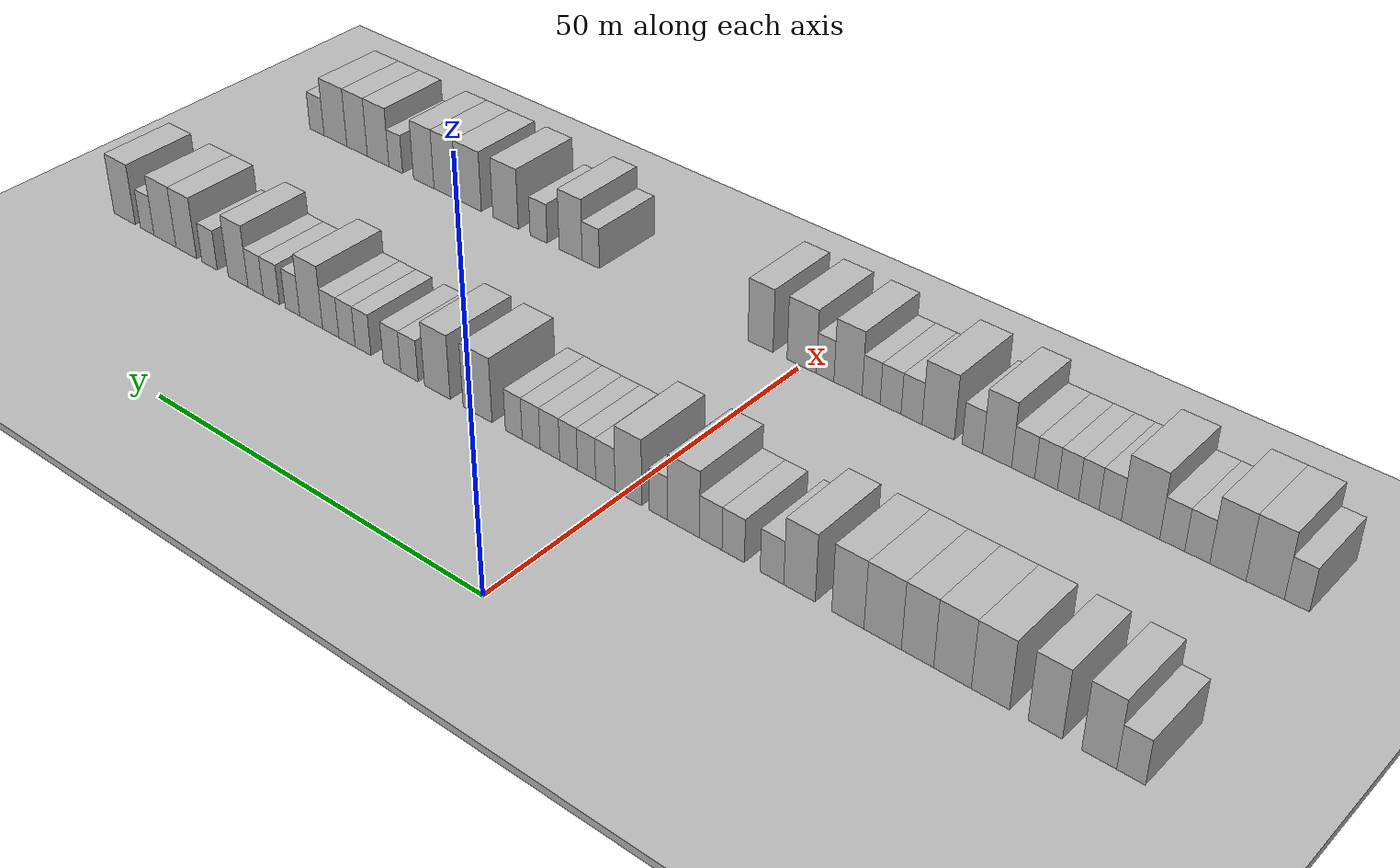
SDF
<sdf version="1.6">
 <world name="default">
  <include><name>ground_plane_1</name><uri>model://HANNAS_ground_plane</uri></include>
  <include>
   <name>ground_plane_2</name>
   <uri>model://HANNAS_ground_plane</uri>
   <pose>100 0 0  0 0 0</pose>
  </include>
  <model name="building_33">
   <static>1</static>
   <pose>25.0000 -60.5266 0 0.000000 0.000000 0.000000</pose>
   <link name="link">
    <pose>0 0 3.00 0 0 0</pose>
    <collision name="collision"><geometry><box><size>10.0000 2.9038 6.0000</size></box></geometry></collision>
    <visual name="visual">
     <cast_shadows>0</cast_shadows>
     <geometry><box><size>10.0000 2.9038 6.0000</size></box></geometry>
     <material>
      <script>
       <uri>model://HANNAS_wall/materials/scripts</uri>
       <uri>model://HANNAS_wall/materials/textures</uri>
       <name>vrc/HANNAS_wall</name>
      </script>
     </material>
    </visual>
   </link>
  </model>
  <model name="building_34">
   <static>1</static>
   <pose>25.0000 -57.2650 0 0.000000 0.000000 0.000000</pose>
   <link name="link">
    <pose>0 0 4.50 0 0 0</pose>
    <collision name="collision"><geometry><box><size>10.0000 3.6195 9.0000</size></box></geometry></collision>
    <visual name="visual">
     <cast_shadows>0</cast_shadows>
     <geometry><box><size>10.0000 3.6195 9.0000</size></box></geometry>
     <material>
      <script>
       <uri>model://HANNAS_wall/materials/scripts</uri>
       <uri>model://HANNAS_wall/materials/textures</uri>
       <name>vrc/HANNAS_wall</name>
      </script>
     </material>
    </visual>
   </link>
  </model>
  <model name="building_35">
   <static>1</static>
   <pose>25.0000 -51.6210 0 0.000000 0.000000 0.000000</pose>
   <link name="link">
    <pose>0 0 4.50 0 0 0</pose>
    <collision name="collision"><geometry><box><size>10.0000 3.6685 9.0000</size></box></geometry></collision>
    <visual name="visual">
     <cast_shadows>0</cast_shadows>
     <geometry><box><size>10.0000 3.6685 9.0000</size></box></geometry>
     <material>
      <script>
       <uri>model://HANNAS_wall/materials/scripts</uri>
       <uri>model://HANNAS_wall/materials/textures</uri>
       <name>vrc/HANNAS_wall</name>
      </script>
     </material>
    </visual>
   </link>
  </model>
  <model name="building_36">
   <static>1</static>
   <pose>25.0000 -45.6863 0 0.000000 0.000000 0.000000</pose>
   <link name="link">
    <pose>0 0 4.50 0 0 0</pose>
    <collision name="collision"><geometry><box><size>10.0000 4.2008 9.0000</size></box></geometry></collision>
    <visual name="visual">
     <cast_shadows>0</cast_shadows>
     <geometry><box><size>10.0000 4.2008 9.0000</size></box></geometry>
     <material>
      <script>
       <uri>model://HANNAS_wall/materials/scripts</uri>
       <uri>model://HANNAS_wall/materials/textures</uri>
       <name>vrc/HANNAS_wall</name>
      </script>
     </material>
    </visual>
   </link>
  </model>
  <model name="building_37">
   <static>1</static>
   <pose>25.0000 -41.4699 0 0.000000 0.000000 0.000000</pose>
   <link name="link">
    <pose>0 0 4.50 0 0 0</pose>
    <collision name="collision"><geometry><box><size>10.0000 4.2320 9.0000</size></box></geometry></collision>
    <visual name="visual">
     <cast_shadows>0</cast_shadows>
     <geometry><box><size>10.0000 4.2320 9.0000</size></box></geometry>
     <material>
      <script>
       <uri>model://HANNAS_wall/materials/scripts</uri>
       <uri>model://HANNAS_wall/materials/textures</uri>
       <name>vrc/HANNAS_wall</name>
      </script>
     </material>
    </visual>
   </link>
  </model>
  <model name="building_38">
   <static>1</static>
   <pose>25.0000 -37.5011 0 0.000000 0.000000 0.000000</pose>
   <link name="link">
    <pose>0 0 4.50 0 0 0</pose>
    <collision name="collision"><geometry><box><size>10.0000 3.7056 9.0000</size></box></geometry></collision>
    <visual name="visual">
     <cast_shadows>0</cast_shadows>
     <geometry><box><size>10.0000 3.7056 9.0000</size></box></geometry>
     <material>
      <script>
       <uri>model://HANNAS_wall/materials/scripts</uri>
       <uri>model://HANNAS_wall/materials/textures</uri>
       <name>vrc/HANNAS_wall</name>
      </script>
     </material>
    </visual>
   </link>
  </model>
  <model name="building_39">
   <static>1</static>
   <pose>25.0000 -33.4567 0 0.000000 0.000000 0.000000</pose>
   <link name="link">
    <pose>0 0 4.50 0 0 0</pose>
    <collision name="collision"><geometry><box><size>10.0000 4.3831 9.0000</size></box></geometry></collision>
    <visual name="visual">
     <cast_shadows>0</cast_shadows>
     <geometry><box><size>10.0000 4.3831 9.0000</size></box></geometry>
     <material>
      <script>
       <uri>model://HANNAS_wall/materials/scripts</uri>
       <uri>model://HANNAS_wall/materials/textures</uri>
       <name>vrc/HANNAS_wall</name>
      </script>
     </material>
    </visual>
   </link>
  </model>
  <model name="building_40">
   <static>1</static>
   <pose>25.0000 -29.3415 0 0.000000 0.000000 0.000000</pose>
   <link name="link">
    <pose>0 0 4.50 0 0 0</pose>
    <collision name="collision"><geometry><box><size>10.0000 3.8474 9.0000</size></box></geometry></collision>
    <visual name="visual">
     <cast_shadows>0</cast_shadows>
     <geometry><box><size>10.0000 3.8474 9.0000</size></box></geometry>
     <material>
      <script>
       <uri>model://HANNAS_wall/materials/scripts</uri>
       <uri>model://HANNAS_wall/materials/textures</uri>
       <name>vrc/HANNAS_wall</name>
      </script>
     </material>
    </visual>
   </link>
  </model>
  <model name="building_41">
   <static>1</static>
   <pose>25.0000 -23.4718 0 0.000000 0.000000 0.000000</pose>
   <link name="link">
    <pose>0 0 4.50 0 0 0</pose>
    <collision name="collision"><geometry><box><size>10.0000 3.8921 9.0000</size></box></geometry></collision>
    <visual name="visual">
     <cast_shadows>0</cast_shadows>
     <geometry><box><size>10.0000 3.8921 9.0000</size></box></geometry>
     <material>
      <script>
       <uri>model://HANNAS_wall/materials/scripts</uri>
       <uri>model://HANNAS_wall/materials/textures</uri>
       <name>vrc/HANNAS_wall</name>
      </script>
     </material>
    </visual>
   </link>
  </model>
  <model name="building_42">
   <static>1</static>
   <pose>25.0000 -20.0502 0 0.000000 0.000000 0.000000</pose>
   <link name="link">
    <pose>0 0 3.00 0 0 0</pose>
    <collision name="collision"><geometry><box><size>10.0000 2.9510 6.0000</size></box></geometry></collision>
    <visual name="visual">
     <cast_shadows>0</cast_shadows>
     <geometry><box><size>10.0000 2.9510 6.0000</size></box></geometry>
     <material>
      <script>
       <uri>model://HANNAS_wall/materials/scripts</uri>
       <uri>model://HANNAS_wall/materials/textures</uri>
       <name>vrc/HANNAS_wall</name>
      </script>
     </material>
    </visual>
   </link>
  </model>
  <model name="building_43">
   <static>1</static>
   <pose>25.0000 -15.1370 0 0.000000 0.000000 0.000000</pose>
   <link name="link">
    <pose>0 0 3.00 0 0 0</pose>
    <collision name="collision"><geometry><box><size>10.0000 2.8754 6.0000</size></box></geometry></collision>
    <visual name="visual">
     <cast_shadows>0</cast_shadows>
     <geometry><box><size>10.0000 2.8754 6.0000</size></box></geometry>
     <material>
      <script>
       <uri>model://HANNAS_wall/materials/scripts</uri>
       <uri>model://HANNAS_wall/materials/textures</uri>
       <name>vrc/HANNAS_wall</name>
      </script>
     </material>
    </visual>
   </link>
  </model>
  <model name="building_44">
   <static>1</static>
   <pose>25.0000 -12.2270 0 0.000000 0.000000 0.000000</pose>
   <link name="link">
    <pose>0 0 3.00 0 0 0</pose>
    <collision name="collision"><geometry><box><size>10.0000 2.9447 6.0000</size></box></geometry></collision>
    <visual name="visual">
     <cast_shadows>0</cast_shadows>
     <geometry><box><size>10.0000 2.9447 6.0000</size></box></geometry>
     <material>
      <script>
       <uri>model://HANNAS_wall/materials/scripts</uri>
       <uri>model://HANNAS_wall/materials/textures</uri>
       <name>vrc/HANNAS_wall</name>
      </script>
     </material>
    </visual>
   </link>
  </model>
  <model name="building_45">
   <static>1</static>
   <pose>25.0000 -8.6451 0 0.000000 0.000000 0.000000</pose>
   <link name="link">
    <pose>0 0 4.50 0 0 0</pose>
    <collision name="collision"><geometry><box><size>10.0000 4.2191 9.0000</size></box></geometry></collision>
    <visual name="visual">
     <cast_shadows>0</cast_shadows>
     <geometry><box><size>10.0000 4.2191 9.0000</size></box></geometry>
     <material>
      <script>
       <uri>model://HANNAS_wall/materials/scripts</uri>
       <uri>model://HANNAS_wall/materials/textures</uri>
       <name>vrc/HANNAS_wall</name>
      </script>
     </material>
    </visual>
   </link>
  </model>
  <model name="building_46">
   <static>1</static>
   <pose>25.0000 -5.2755 0 0.000000 0.000000 0.000000</pose>
   <link name="link">
    <pose>0 0 3.00 0 0 0</pose>
    <collision name="collision"><geometry><box><size>10.0000 2.5201 6.0000</size></box></geometry></collision>
    <visual name="visual">
     <cast_shadows>0</cast_shadows>
     <geometry><box><size>10.0000 2.5201 6.0000</size></box></geometry>
     <material>
      <script>
       <uri>model://HANNAS_wall/materials/scripts</uri>
       <uri>model://HANNAS_wall/materials/textures</uri>
       <name>vrc/HANNAS_wall</name>
      </script>
     </material>
    </visual>
   </link>
  </model>
  <model name="building_47">
   <static>1</static>
   <pose>25.0000 -1.1833 0 0.000000 0.000000 0.000000</pose>
   <link name="link">
    <pose>0 0 4.50 0 0 0</pose>
    <collision name="collision"><geometry><box><size>10.0000 3.6642 9.0000</size></box></geometry></collision>
    <visual name="visual">
     <cast_shadows>0</cast_shadows>
     <geometry><box><size>10.0000 3.6642 9.0000</size></box></geometry>
     <material>
      <script>
       <uri>model://HANNAS_wall/materials/scripts</uri>
       <uri>model://HANNAS_wall/materials/textures</uri>
       <name>vrc/HANNAS_wall</name>
      </script>
     </material>
    </visual>
   </link>
  </model>
  <model name="building_48">
   <static>1</static>
   <pose>25.0000 2.0056 0 0.000000 0.000000 0.000000</pose>
   <link name="link">
    <pose>0 0 3.00 0 0 0</pose>
    <collision name="collision"><geometry><box><size>10.0000 2.7137 6.0000</size></box></geometry></collision>
    <visual name="visual">
     <cast_shadows>0</cast_shadows>
     <geometry><box><size>10.0000 2.7137 6.0000</size></box></geometry>
     <material>
      <script>
       <uri>model://HANNAS_wall/materials/scripts</uri>
       <uri>model://HANNAS_wall/materials/textures</uri>
       <name>vrc/HANNAS_wall</name>
      </script>
     </material>
    </visual>
   </link>
  </model>
  <model name="building_49">
   <static>1</static>
   <pose>25.0000 4.6381 0 0.000000 0.000000 0.000000</pose>
   <link name="link">
    <pose>0 0 3.00 0 0 0</pose>
    <collision name="collision"><geometry><box><size>10.0000 2.5514 6.0000</size></box></geometry></collision>
    <visual name="visual">
     <cast_shadows>0</cast_shadows>
     <geometry><box><size>10.0000 2.5514 6.0000</size></box></geometry>
     <material>
      <script>
       <uri>model://HANNAS_wall/materials/scripts</uri>
       <uri>model://HANNAS_wall/materials/textures</uri>
       <name>vrc/HANNAS_wall</name>
      </script>
     </material>
    </visual>
   </link>
  </model>
  <model name="building_50">
   <static>1</static>
   <pose>25.0000 7.1918 0 0.000000 0.000000 0.000000</pose>
   <link name="link">
    <pose>0 0 3.00 0 0 0</pose>
    <collision name="collision"><geometry><box><size>10.0000 2.5560 6.0000</size></box></geometry></collision>
    <visual name="visual">
     <cast_shadows>0</cast_shadows>
     <geometry><box><size>10.0000 2.5560 6.0000</size></box></geometry>
     <material>
      <script>
       <uri>model://HANNAS_wall/materials/scripts</uri>
       <uri>model://HANNAS_wall/materials/textures</uri>
       <name>vrc/HANNAS_wall</name>
      </script>
     </material>
    </visual>
   </link>
  </model>
  <model name="building_51">
   <static>1</static>
   <pose>25.0000 9.8835 0 0.000000 0.000000 0.000000</pose>
   <link name="link">
    <pose>0 0 3.00 0 0 0</pose>
    <collision name="collision"><geometry><box><size>10.0000 2.8274 6.0000</size></box></geometry></collision>
    <visual name="visual">
     <cast_shadows>0</cast_shadows>
     <geometry><box><size>10.0000 2.8274 6.0000</size></box></geometry>
     <material>
      <script>
       <uri>model://HANNAS_wall/materials/scripts</uri>
       <uri>model://HANNAS_wall/materials/textures</uri>
       <name>vrc/HANNAS_wall</name>
      </script>
     </material>
    </visual>
   </link>
  </model>
  <model name="building_52">
   <static>1</static>
   <pose>25.0000 12.6209 0 0.000000 0.000000 0.000000</pose>
   <link name="link">
    <pose>0 0 3.00 0 0 0</pose>
    <collision name="collision"><geometry><box><size>10.0000 2.6474 6.0000</size></box></geometry></collision>
    <visual name="visual">
     <cast_shadows>0</cast_shadows>
     <geometry><box><size>10.0000 2.6474 6.0000</size></box></geometry>
     <material>
      <script>
       <uri>model://HANNAS_wall/materials/scripts</uri>
       <uri>model://HANNAS_wall/materials/textures</uri>
       <name>vrc/HANNAS_wall</name>
      </script>
     </material>
    </visual>
   </link>
  </model>
  <model name="building_53">
   <static>1</static>
   <pose>25.0000 15.1925 0 0.000000 0.000000 0.000000</pose>
   <link name="link">
    <pose>0 0 3.00 0 0 0</pose>
    <collision name="collision"><geometry><box><size>10.0000 2.4960 6.0000</size></box></geometry></collision>
    <visual name="visual">
     <cast_shadows>0</cast_shadows>
     <geometry><box><size>10.0000 2.4960 6.0000</size></box></geometry>
     <material>
      <script>
       <uri>model://HANNAS_wall/materials/scripts</uri>
       <uri>model://HANNAS_wall/materials/textures</uri>
       <name>vrc/HANNAS_wall</name>
      </script>
     </material>
    </visual>
   </link>
  </model>
  <model name="building_54">
   <static>1</static>
   <pose>25.0000 20.6453 0 0.000000 0.000000 0.000000</pose>
   <link name="link">
    <pose>0 0 4.50 0 0 0</pose>
    <collision name="collision"><geometry><box><size>10.0000 4.4096 9.0000</size></box></geometry></collision>
    <visual name="visual">
     <cast_shadows>0</cast_shadows>
     <geometry><box><size>10.0000 4.4096 9.0000</size></box></geometry>
     <material>
      <script>
       <uri>model://HANNAS_wall/materials/scripts</uri>
       <uri>model://HANNAS_wall/materials/textures</uri>
       <name>vrc/HANNAS_wall</name>
      </script>
     </material>
    </visual>
   </link>
  </model>
  <model name="building_55">
   <static>1</static>
   <pose>25.0000 26.8684 0 0.000000 0.000000 0.000000</pose>
   <link name="link">
    <pose>0 0 4.50 0 0 0</pose>
    <collision name="collision"><geometry><box><size>10.0000 4.0366 9.0000</size></box></geometry></collision>
    <visual name="visual">
     <cast_shadows>0</cast_shadows>
     <geometry><box><size>10.0000 4.0366 9.0000</size></box></geometry>
     <material>
      <script>
       <uri>model://HANNAS_wall/materials/scripts</uri>
       <uri>model://HANNAS_wall/materials/textures</uri>
       <name>vrc/HANNAS_wall</name>
      </script>
     </material>
    </visual>
   </link>
  </model>
  <model name="building_56">
   <static>1</static>
   <pose>25.0000 31.2788 0 0.000000 0.000000 0.000000</pose>
   <link name="link">
    <pose>0 0 3.00 0 0 0</pose>
    <collision name="collision"><geometry><box><size>10.0000 2.7842 6.0000</size></box></geometry></collision>
    <visual name="visual">
     <cast_shadows>0</cast_shadows>
     <geometry><box><size>10.0000 2.7842 6.0000</size></box></geometry>
     <material>
      <script>
       <uri>model://HANNAS_wall/materials/scripts</uri>
       <uri>model://HANNAS_wall/materials/textures</uri>
       <name>vrc/HANNAS_wall</name>
      </script>
     </material>
    </visual>
   </link>
  </model>
  <model name="building_57">
   <static>1</static>
   <pose>25.0000 34.0920 0 0.000000 0.000000 0.000000</pose>
   <link name="link">
    <pose>0 0 3.00 0 0 0</pose>
    <collision name="collision"><geometry><box><size>10.0000 2.8422 6.0000</size></box></geometry></collision>
    <visual name="visual">
     <cast_shadows>0</cast_shadows>
     <geometry><box><size>10.0000 2.8422 6.0000</size></box></geometry>
     <material>
      <script>
       <uri>model://HANNAS_wall/materials/scripts</uri>
       <uri>model://HANNAS_wall/materials/textures</uri>
       <name>vrc/HANNAS_wall</name>
      </script>
     </material>
    </visual>
   </link>
  </model>
  <model name="building_58">
   <static>1</static>
   <pose>25.0000 38.8232 0 0.000000 0.000000 0.000000</pose>
   <link name="link">
    <pose>0 0 3.00 0 0 0</pose>
    <collision name="collision"><geometry><box><size>10.0000 2.6201 6.0000</size></box></geometry></collision>
    <visual name="visual">
     <cast_shadows>0</cast_shadows>
     <geometry><box><size>10.0000 2.6201 6.0000</size></box></geometry>
     <material>
      <script>
       <uri>model://HANNAS_wall/materials/scripts</uri>
       <uri>model://HANNAS_wall/materials/textures</uri>
       <name>vrc/HANNAS_wall</name>
      </script>
     </material>
    </visual>
   </link>
  </model>
  <model name="building_59">
   <static>1</static>
   <pose>25.0000 41.4877 0 0.000000 0.000000 0.000000</pose>
   <link name="link">
    <pose>0 0 3.00 0 0 0</pose>
    <collision name="collision"><geometry><box><size>10.0000 2.7090 6.0000</size></box></geometry></collision>
    <visual name="visual">
     <cast_shadows>0</cast_shadows>
     <geometry><box><size>10.0000 2.7090 6.0000</size></box></geometry>
     <material>
      <script>
       <uri>model://HANNAS_wall/materials/scripts</uri>
       <uri>model://HANNAS_wall/materials/textures</uri>
       <name>vrc/HANNAS_wall</name>
      </script>
     </material>
    </visual>
   </link>
  </model>
  <model name="building_60">
   <static>1</static>
   <pose>25.0000 44.2271 0 0.000000 0.000000 0.000000</pose>
   <link name="link">
    <pose>0 0 3.00 0 0 0</pose>
    <collision name="collision"><geometry><box><size>10.0000 2.7699 6.0000</size></box></geometry></collision>
    <visual name="visual">
     <cast_shadows>0</cast_shadows>
     <geometry><box><size>10.0000 2.7699 6.0000</size></box></geometry>
     <material>
      <script>
       <uri>model://HANNAS_wall/materials/scripts</uri>
       <uri>model://HANNAS_wall/materials/textures</uri>
       <name>vrc/HANNAS_wall</name>
      </script>
     </material>
    </visual>
   </link>
  </model>
  <model name="building_61">
   <static>1</static>
   <pose>25.0000 47.5703 0 0.000000 0.000000 0.000000</pose>
   <link name="link">
    <pose>0 0 4.50 0 0 0</pose>
    <collision name="collision"><geometry><box><size>10.0000 3.9163 9.0000</size></box></geometry></collision>
    <visual name="visual">
     <cast_shadows>0</cast_shadows>
     <geometry><box><size>10.0000 3.9163 9.0000</size></box></geometry>
     <material>
      <script>
       <uri>model://HANNAS_wall/materials/scripts</uri>
       <uri>model://HANNAS_wall/materials/textures</uri>
       <name>vrc/HANNAS_wall</name>
      </script>
     </material>
    </visual>
   </link>
  </model>
  <model name="building_62">
   <static>1</static>
   <pose>25.0000 50.7920 0 0.000000 0.000000 0.000000</pose>
   <link name="link">
    <pose>0 0 3.00 0 0 0</pose>
    <collision name="collision"><geometry><box><size>10.0000 2.5271 6.0000</size></box></geometry></collision>
    <visual name="visual">
     <cast_shadows>0</cast_shadows>
     <geometry><box><size>10.0000 2.5271 6.0000</size></box></geometry>
     <material>
      <script>
       <uri>model://HANNAS_wall/materials/scripts</uri>
       <uri>model://HANNAS_wall/materials/textures</uri>
       <name>vrc/HANNAS_wall</name>
      </script>
     </material>
    </visual>
   </link>
  </model>
  <model name="building_63">
   <static>1</static>
   <pose>25.0000 54.4935 0 0.000000 0.000000 0.000000</pose>
   <link name="link">
    <pose>0 0 3.00 0 0 0</pose>
    <collision name="collision"><geometry><box><size>10.0000 2.8759 6.0000</size></box></geometry></collision>
    <visual name="visual">
     <cast_shadows>0</cast_shadows>
     <geometry><box><size>10.0000 2.8759 6.0000</size></box></geometry>
     <material>
      <script>
       <uri>model://HANNAS_wall/materials/scripts</uri>
       <uri>model://HANNAS_wall/materials/textures</uri>
       <name>vrc/HANNAS_wall</name>
      </script>
     </material>
    </visual>
   </link>
  </model>
  <model name="building_64">
   <static>1</static>
   <pose>25.0000 57.3033 0 0.000000 0.000000 0.000000</pose>
   <link name="link">
    <pose>0 0 3.00 0 0 0</pose>
    <collision name="collision"><geometry><box><size>10.0000 2.7436 6.0000</size></box></geometry></collision>
    <visual name="visual">
     <cast_shadows>0</cast_shadows>
     <geometry><box><size>10.0000 2.7436 6.0000</size></box></geometry>
     <material>
      <script>
       <uri>model://HANNAS_wall/materials/scripts</uri>
       <uri>model://HANNAS_wall/materials/textures</uri>
       <name>vrc/HANNAS_wall</name>
      </script>
     </material>
    </visual>
   </link>
  </model>
  <model name="building_65">
   <static>1</static>
   <pose>25.0000 60.4781 0 0.000000 0.000000 0.000000</pose>
   <link name="link">
    <pose>0 0 4.50 0 0 0</pose>
    <collision name="collision"><geometry><box><size>10.0000 3.6060 9.0000</size></box></geometry></collision>
    <visual name="visual">
     <cast_shadows>0</cast_shadows>
     <geometry><box><size>10.0000 3.6060 9.0000</size></box></geometry>
     <material>
      <script>
       <uri>model://HANNAS_wall/materials/scripts</uri>
       <uri>model://HANNAS_wall/materials/textures</uri>
       <name>vrc/HANNAS_wall</name>
      </script>
     </material>
    </visual>
   </link>
  </model>
  <model name="building_66">
   <static>1</static>
   <pose>25.0000 65.7047 0 0.000000 0.000000 0.000000</pose>
   <link name="link">
    <pose>0 0 3.00 0 0 0</pose>
    <collision name="collision"><geometry><box><size>10.0000 2.8471 6.0000</size></box></geometry></collision>
    <visual name="visual">
     <cast_shadows>0</cast_shadows>
     <geometry><box><size>10.0000 2.8471 6.0000</size></box></geometry>
     <material>
      <script>
       <uri>model://HANNAS_wall/materials/scripts</uri>
       <uri>model://HANNAS_wall/materials/textures</uri>
       <name>vrc/HANNAS_wall</name>
      </script>
     </material>
    </visual>
   </link>
  </model>
  <model name="building_67">
   <static>1</static>
   <pose>25.0000 70.0559 0 0.000000 0.000000 0.000000</pose>
   <link name="link">
    <pose>0 0 4.50 0 0 0</pose>
    <collision name="collision"><geometry><box><size>10.0000 3.8553 9.0000</size></box></geometry></collision>
    <visual name="visual">
     <cast_shadows>0</cast_shadows>
     <geometry><box><size>10.0000 3.8553 9.0000</size></box></geometry>
     <material>
      <script>
       <uri>model://HANNAS_wall/materials/scripts</uri>
       <uri>model://HANNAS_wall/materials/textures</uri>
       <name>vrc/HANNAS_wall</name>
      </script>
     </material>
    </visual>
   </link>
  </model>
  <model name="building_68">
   <static>1</static>
   <pose>25.0000 74.1039 0 0.000000 0.000000 0.000000</pose>
   <link name="link">
    <pose>0 0 4.50 0 0 0</pose>
    <collision name="collision"><geometry><box><size>10.0000 4.2406 9.0000</size></box></geometry></collision>
    <visual name="visual">
     <cast_shadows>0</cast_shadows>
     <geometry><box><size>10.0000 4.2406 9.0000</size></box></geometry>
     <material>
      <script>
       <uri>model://HANNAS_wall/materials/scripts</uri>
       <uri>model://HANNAS_wall/materials/textures</uri>
       <name>vrc/HANNAS_wall</name>
      </script>
     </material>
    </visual>
   </link>
  </model>
  <model name="building_69">
   <static>1</static>
   <pose>25.0000 77.5489 0 0.000000 0.000000 0.000000</pose>
   <link name="link">
    <pose>0 0 3.00 0 0 0</pose>
    <collision name="collision"><geometry><box><size>10.0000 2.6495 6.0000</size></box></geometry></collision>
    <visual name="visual">
     <cast_shadows>0</cast_shadows>
     <geometry><box><size>10.0000 2.6495 6.0000</size></box></geometry>
     <material>
      <script>
       <uri>model://HANNAS_wall/materials/scripts</uri>
       <uri>model://HANNAS_wall/materials/textures</uri>
       <name>vrc/HANNAS_wall</name>
      </script>
     </material>
    </visual>
   </link>
  </model>
  <model name="building_70">
   <static>1</static>
   <pose>25.0000 81.9790 0 0.000000 0.000000 0.000000</pose>
   <link name="link">
    <pose>0 0 4.50 0 0 0</pose>
    <collision name="collision"><geometry><box><size>10.0000 4.2107 9.0000</size></box></geometry></collision>
    <visual name="visual">
     <cast_shadows>0</cast_shadows>
     <geometry><box><size>10.0000 4.2107 9.0000</size></box></geometry>
     <material>
      <script>
       <uri>model://HANNAS_wall/materials/scripts</uri>
       <uri>model://HANNAS_wall/materials/textures</uri>
       <name>vrc/HANNAS_wall</name>
      </script>
     </material>
    </visual>
   </link>
  </model>
  <model name="building_145">
   <static>1</static>
   <pose>55.0000 -61.0956 0 0.000000 0.000000 0.000000</pose>
   <link name="link">
    <pose>0 0 3.00 0 0 0</pose>
    <collision name="collision"><geometry><box><size>10.0000 2.6717 6.0000</size></box></geometry></collision>
    <visual name="visual">
     <cast_shadows>0</cast_shadows>
     <geometry><box><size>10.0000 2.6717 6.0000</size></box></geometry>
     <material>
      <script>
       <uri>model://HANNAS_wall/materials/scripts</uri>
       <uri>model://HANNAS_wall/materials/textures</uri>
       <name>vrc/HANNAS_wall</name>
      </script>
     </material>
    </visual>
   </link>
  </model>
  <model name="building_146">
   <static>1</static>
   <pose>55.0000 -57.6905 0 0.000000 0.000000 0.000000</pose>
   <link name="link">
    <pose>0 0 4.50 0 0 0</pose>
    <collision name="collision"><geometry><box><size>10.0000 4.1386 9.0000</size></box></geometry></collision>
    <visual name="visual">
     <cast_shadows>0</cast_shadows>
     <geometry><box><size>10.0000 4.1386 9.0000</size></box></geometry>
     <material>
      <script>
       <uri>model://HANNAS_wall/materials/scripts</uri>
       <uri>model://HANNAS_wall/materials/textures</uri>
       <name>vrc/HANNAS_wall</name>
      </script>
     </material>
    </visual>
   </link>
  </model>
  <model name="building_147">
   <static>1</static>
   <pose>55.0000 -53.6260 0 0.000000 0.000000 0.000000</pose>
   <link name="link">
    <pose>0 0 4.50 0 0 0</pose>
    <collision name="collision"><geometry><box><size>10.0000 3.9903 9.0000</size></box></geometry></collision>
    <visual name="visual">
     <cast_shadows>0</cast_shadows>
     <geometry><box><size>10.0000 3.9903 9.0000</size></box></geometry>
     <material>
      <script>
       <uri>model://HANNAS_wall/materials/scripts</uri>
       <uri>model://HANNAS_wall/materials/textures</uri>
       <name>vrc/HANNAS_wall</name>
      </script>
     </material>
    </visual>
   </link>
  </model>
  <model name="building_148">
   <static>1</static>
   <pose>55.0000 -50.2237 0 0.000000 0.000000 0.000000</pose>
   <link name="link">
    <pose>0 0 3.00 0 0 0</pose>
    <collision name="collision"><geometry><box><size>10.0000 2.8142 6.0000</size></box></geometry></collision>
    <visual name="visual">
     <cast_shadows>0</cast_shadows>
     <geometry><box><size>10.0000 2.8142 6.0000</size></box></geometry>
     <material>
      <script>
       <uri>model://HANNAS_wall/materials/scripts</uri>
       <uri>model://HANNAS_wall/materials/textures</uri>
       <name>vrc/HANNAS_wall</name>
      </script>
     </material>
    </visual>
   </link>
  </model>
  <model name="building_149">
   <static>1</static>
   <pose>55.0000 -47.4022 0 0.000000 0.000000 0.000000</pose>
   <link name="link">
    <pose>0 0 3.00 0 0 0</pose>
    <collision name="collision"><geometry><box><size>10.0000 2.8289 6.0000</size></box></geometry></collision>
    <visual name="visual">
     <cast_shadows>0</cast_shadows>
     <geometry><box><size>10.0000 2.8289 6.0000</size></box></geometry>
     <material>
      <script>
       <uri>model://HANNAS_wall/materials/scripts</uri>
       <uri>model://HANNAS_wall/materials/textures</uri>
       <name>vrc/HANNAS_wall</name>
      </script>
     </material>
    </visual>
   </link>
  </model>
  <model name="building_150">
   <static>1</static>
   <pose>55.0000 -43.7653 0 0.000000 0.000000 0.000000</pose>
   <link name="link">
    <pose>0 0 4.50 0 0 0</pose>
    <collision name="collision"><geometry><box><size>10.0000 4.4448 9.0000</size></box></geometry></collision>
    <visual name="visual">
     <cast_shadows>0</cast_shadows>
     <geometry><box><size>10.0000 4.4448 9.0000</size></box></geometry>
     <material>
      <script>
       <uri>model://HANNAS_wall/materials/scripts</uri>
       <uri>model://HANNAS_wall/materials/textures</uri>
       <name>vrc/HANNAS_wall</name>
      </script>
     </material>
    </visual>
   </link>
  </model>
  <model name="building_151">
   <static>1</static>
   <pose>55.0000 -40.2299 0 0.000000 0.000000 0.000000</pose>
   <link name="link">
    <pose>0 0 3.00 0 0 0</pose>
    <collision name="collision"><geometry><box><size>10.0000 2.6259 6.0000</size></box></geometry></collision>
    <visual name="visual">
     <cast_shadows>0</cast_shadows>
     <geometry><box><size>10.0000 2.6259 6.0000</size></box></geometry>
     <material>
      <script>
       <uri>model://HANNAS_wall/materials/scripts</uri>
       <uri>model://HANNAS_wall/materials/textures</uri>
       <name>vrc/HANNAS_wall</name>
      </script>
     </material>
    </visual>
   </link>
  </model>
  <model name="building_152">
   <static>1</static>
   <pose>55.0000 -37.7007 0 0.000000 0.000000 0.000000</pose>
   <link name="link">
    <pose>0 0 3.00 0 0 0</pose>
    <collision name="collision"><geometry><box><size>10.0000 2.4325 6.0000</size></box></geometry></collision>
    <visual name="visual">
     <cast_shadows>0</cast_shadows>
     <geometry><box><size>10.0000 2.4325 6.0000</size></box></geometry>
     <material>
      <script>
       <uri>model://HANNAS_wall/materials/scripts</uri>
       <uri>model://HANNAS_wall/materials/textures</uri>
       <name>vrc/HANNAS_wall</name>
      </script>
     </material>
    </visual>
   </link>
  </model>
  <model name="building_153">
   <static>1</static>
   <pose>55.0000 -35.2182 0 0.000000 0.000000 0.000000</pose>
   <link name="link">
    <pose>0 0 3.00 0 0 0</pose>
    <collision name="collision"><geometry><box><size>10.0000 2.5325 6.0000</size></box></geometry></collision>
    <visual name="visual">
     <cast_shadows>0</cast_shadows>
     <geometry><box><size>10.0000 2.5325 6.0000</size></box></geometry>
     <material>
      <script>
       <uri>model://HANNAS_wall/materials/scripts</uri>
       <uri>model://HANNAS_wall/materials/textures</uri>
       <name>vrc/HANNAS_wall</name>
      </script>
     </material>
    </visual>
   </link>
  </model>
  <model name="building_154">
   <static>1</static>
   <pose>55.0000 -32.5647 0 0.000000 0.000000 0.000000</pose>
   <link name="link">
    <pose>0 0 3.00 0 0 0</pose>
    <collision name="collision"><geometry><box><size>10.0000 2.7745 6.0000</size></box></geometry></collision>
    <visual name="visual">
     <cast_shadows>0</cast_shadows>
     <geometry><box><size>10.0000 2.7745 6.0000</size></box></geometry>
     <material>
      <script>
       <uri>model://HANNAS_wall/materials/scripts</uri>
       <uri>model://HANNAS_wall/materials/textures</uri>
       <name>vrc/HANNAS_wall</name>
      </script>
     </material>
    </visual>
   </link>
  </model>
  <model name="building_155">
   <static>1</static>
   <pose>55.0000 -29.7502 0 0.000000 0.000000 0.000000</pose>
   <link name="link">
    <pose>0 0 3.00 0 0 0</pose>
    <collision name="collision"><geometry><box><size>10.0000 2.8545 6.0000</size></box></geometry></collision>
    <visual name="visual">
     <cast_shadows>0</cast_shadows>
     <geometry><box><size>10.0000 2.8545 6.0000</size></box></geometry>
     <material>
      <script>
       <uri>model://HANNAS_wall/materials/scripts</uri>
       <uri>model://HANNAS_wall/materials/textures</uri>
       <name>vrc/HANNAS_wall</name>
      </script>
     </material>
    </visual>
   </link>
  </model>
  <model name="building_156">
   <static>1</static>
   <pose>55.0000 -26.5014 0 0.000000 0.000000 0.000000</pose>
   <link name="link">
    <pose>0 0 4.50 0 0 0</pose>
    <collision name="collision"><geometry><box><size>10.0000 3.6430 9.0000</size></box></geometry></collision>
    <visual name="visual">
     <cast_shadows>0</cast_shadows>
     <geometry><box><size>10.0000 3.6430 9.0000</size></box></geometry>
     <material>
      <script>
       <uri>model://HANNAS_wall/materials/scripts</uri>
       <uri>model://HANNAS_wall/materials/textures</uri>
       <name>vrc/HANNAS_wall</name>
      </script>
     </material>
    </visual>
   </link>
  </model>
  <model name="building_157">
   <static>1</static>
   <pose>55.0000 -23.3731 0 0.000000 0.000000 0.000000</pose>
   <link name="link">
    <pose>0 0 3.00 0 0 0</pose>
    <collision name="collision"><geometry><box><size>10.0000 2.6136 6.0000</size></box></geometry></collision>
    <visual name="visual">
     <cast_shadows>0</cast_shadows>
     <geometry><box><size>10.0000 2.6136 6.0000</size></box></geometry>
     <material>
      <script>
       <uri>model://HANNAS_wall/materials/scripts</uri>
       <uri>model://HANNAS_wall/materials/textures</uri>
       <name>vrc/HANNAS_wall</name>
      </script>
     </material>
    </visual>
   </link>
  </model>
  <model name="building_158">
   <static>1</static>
   <pose>55.0000 -18.9725 0 0.000000 0.000000 0.000000</pose>
   <link name="link">
    <pose>0 0 4.50 0 0 0</pose>
    <collision name="collision"><geometry><box><size>10.0000 4.1876 9.0000</size></box></geometry></collision>
    <visual name="visual">
     <cast_shadows>0</cast_shadows>
     <geometry><box><size>10.0000 4.1876 9.0000</size></box></geometry>
     <material>
      <script>
       <uri>model://HANNAS_wall/materials/scripts</uri>
       <uri>model://HANNAS_wall/materials/textures</uri>
       <name>vrc/HANNAS_wall</name>
      </script>
     </material>
    </visual>
   </link>
  </model>
  <model name="building_159">
   <static>1</static>
   <pose>55.0000 -15.4908 0 0.000000 0.000000 0.000000</pose>
   <link name="link">
    <pose>0 0 3.00 0 0 0</pose>
    <collision name="collision"><geometry><box><size>10.0000 2.7760 6.0000</size></box></geometry></collision>
    <visual name="visual">
     <cast_shadows>0</cast_shadows>
     <geometry><box><size>10.0000 2.7760 6.0000</size></box></geometry>
     <material>
      <script>
       <uri>model://HANNAS_wall/materials/scripts</uri>
       <uri>model://HANNAS_wall/materials/textures</uri>
       <name>vrc/HANNAS_wall</name>
      </script>
     </material>
    </visual>
   </link>
  </model>
  <model name="building_160">
   <static>1</static>
   <pose>55.0000 -12.6981 0 0.000000 0.000000 0.000000</pose>
   <link name="link">
    <pose>0 0 3.00 0 0 0</pose>
    <collision name="collision"><geometry><box><size>10.0000 2.8094 6.0000</size></box></geometry></collision>
    <visual name="visual">
     <cast_shadows>0</cast_shadows>
     <geometry><box><size>10.0000 2.8094 6.0000</size></box></geometry>
     <material>
      <script>
       <uri>model://HANNAS_wall/materials/scripts</uri>
       <uri>model://HANNAS_wall/materials/textures</uri>
       <name>vrc/HANNAS_wall</name>
      </script>
     </material>
    </visual>
   </link>
  </model>
  <model name="building_161">
   <static>1</static>
   <pose>55.0000 -10.0756 0 0.000000 0.000000 0.000000</pose>
   <link name="link">
    <pose>0 0 3.00 0 0 0</pose>
    <collision name="collision"><geometry><box><size>10.0000 2.4357 6.0000</size></box></geometry></collision>
    <visual name="visual">
     <cast_shadows>0</cast_shadows>
     <geometry><box><size>10.0000 2.4357 6.0000</size></box></geometry>
     <material>
      <script>
       <uri>model://HANNAS_wall/materials/scripts</uri>
       <uri>model://HANNAS_wall/materials/textures</uri>
       <name>vrc/HANNAS_wall</name>
      </script>
     </material>
    </visual>
   </link>
  </model>
  <model name="building_162">
   <static>1</static>
   <pose>55.0000 -6.9256 0 0.000000 0.000000 0.000000</pose>
   <link name="link">
    <pose>0 0 4.50 0 0 0</pose>
    <collision name="collision"><geometry><box><size>10.0000 3.8642 9.0000</size></box></geometry></collision>
    <visual name="visual">
     <cast_shadows>0</cast_shadows>
     <geometry><box><size>10.0000 3.8642 9.0000</size></box></geometry>
     <material>
      <script>
       <uri>model://HANNAS_wall/materials/scripts</uri>
       <uri>model://HANNAS_wall/materials/textures</uri>
       <name>vrc/HANNAS_wall</name>
      </script>
     </material>
    </visual>
   </link>
  </model>
  <model name="building_163">
   <static>1</static>
   <pose>55.0000 -3.7816 0 0.000000 0.000000 0.000000</pose>
   <link name="link">
    <pose>0 0 3.00 0 0 0</pose>
    <collision name="collision"><geometry><box><size>10.0000 2.4238 6.0000</size></box></geometry></collision>
    <visual name="visual">
     <cast_shadows>0</cast_shadows>
     <geometry><box><size>10.0000 2.4238 6.0000</size></box></geometry>
     <material>
      <script>
       <uri>model://HANNAS_wall/materials/scripts</uri>
       <uri>model://HANNAS_wall/materials/textures</uri>
       <name>vrc/HANNAS_wall</name>
      </script>
     </material>
    </visual>
   </link>
  </model>
  <model name="building_164">
   <static>1</static>
   <pose>55.0000 -0.4888 0 0.000000 0.000000 0.000000</pose>
   <link name="link">
    <pose>0 0 4.50 0 0 0</pose>
    <collision name="collision"><geometry><box><size>10.0000 4.1617 9.0000</size></box></geometry></collision>
    <visual name="visual">
     <cast_shadows>0</cast_shadows>
     <geometry><box><size>10.0000 4.1617 9.0000</size></box></geometry>
     <material>
      <script>
       <uri>model://HANNAS_wall/materials/scripts</uri>
       <uri>model://HANNAS_wall/materials/textures</uri>
       <name>vrc/HANNAS_wall</name>
      </script>
     </material>
    </visual>
   </link>
  </model>
  <model name="building_165">
   <static>1</static>
   <pose>55.0000 5.4091 0 0.000000 0.000000 0.000000</pose>
   <link name="link">
    <pose>0 0 4.50 0 0 0</pose>
    <collision name="collision"><geometry><box><size>10.0000 3.6341 9.0000</size></box></geometry></collision>
    <visual name="visual">
     <cast_shadows>0</cast_shadows>
     <geometry><box><size>10.0000 3.6341 9.0000</size></box></geometry>
     <material>
      <script>
       <uri>model://HANNAS_wall/materials/scripts</uri>
       <uri>model://HANNAS_wall/materials/textures</uri>
       <name>vrc/HANNAS_wall</name>
      </script>
     </material>
    </visual>
   </link>
  </model>
  <model name="building_166">
   <static>1</static>
   <pose>55.0000 31.4121 0 0.000000 0.000000 0.000000</pose>
   <link name="link">
    <pose>0 0 3.00 0 0 0</pose>
    <collision name="collision"><geometry><box><size>10.0000 2.7906 6.0000</size></box></geometry></collision>
    <visual name="visual">
     <cast_shadows>0</cast_shadows>
     <geometry><box><size>10.0000 2.7906 6.0000</size></box></geometry>
     <material>
      <script>
       <uri>model://HANNAS_wall/materials/scripts</uri>
       <uri>model://HANNAS_wall/materials/textures</uri>
       <name>vrc/HANNAS_wall</name>
      </script>
     </material>
    </visual>
   </link>
  </model>
  <model name="building_167">
   <static>1</static>
   <pose>55.0000 34.6942 0 0.000000 0.000000 0.000000</pose>
   <link name="link">
    <pose>0 0 4.50 0 0 0</pose>
    <collision name="collision"><geometry><box><size>10.0000 3.7735 9.0000</size></box></geometry></collision>
    <visual name="visual">
     <cast_shadows>0</cast_shadows>
     <geometry><box><size>10.0000 3.7735 9.0000</size></box></geometry>
     <material>
      <script>
       <uri>model://HANNAS_wall/materials/scripts</uri>
       <uri>model://HANNAS_wall/materials/textures</uri>
       <name>vrc/HANNAS_wall</name>
      </script>
     </material>
    </visual>
   </link>
  </model>
  <model name="building_168">
   <static>1</static>
   <pose>55.0000 40.0072 0 0.000000 0.000000 0.000000</pose>
   <link name="link">
    <pose>0 0 3.00 0 0 0</pose>
    <collision name="collision"><geometry><box><size>10.0000 2.8525 6.0000</size></box></geometry></collision>
    <visual name="visual">
     <cast_shadows>0</cast_shadows>
     <geometry><box><size>10.0000 2.8525 6.0000</size></box></geometry>
     <material>
      <script>
       <uri>model://HANNAS_wall/materials/scripts</uri>
       <uri>model://HANNAS_wall/materials/textures</uri>
       <name>vrc/HANNAS_wall</name>
      </script>
     </material>
    </visual>
   </link>
  </model>
  <model name="building_169">
   <static>1</static>
   <pose>55.0000 45.6147 0 0.000000 0.000000 0.000000</pose>
   <link name="link">
    <pose>0 0 4.50 0 0 0</pose>
    <collision name="collision"><geometry><box><size>10.0000 4.3624 9.0000</size></box></geometry></collision>
    <visual name="visual">
     <cast_shadows>0</cast_shadows>
     <geometry><box><size>10.0000 4.3624 9.0000</size></box></geometry>
     <material>
      <script>
       <uri>model://HANNAS_wall/materials/scripts</uri>
       <uri>model://HANNAS_wall/materials/textures</uri>
       <name>vrc/HANNAS_wall</name>
      </script>
     </material>
    </visual>
   </link>
  </model>
  <model name="building_170">
   <static>1</static>
   <pose>55.0000 52.0046 0 0.000000 0.000000 0.000000</pose>
   <link name="link">
    <pose>0 0 4.50 0 0 0</pose>
    <collision name="collision"><geometry><box><size>10.0000 4.4175 9.0000</size></box></geometry></collision>
    <visual name="visual">
     <cast_shadows>0</cast_shadows>
     <geometry><box><size>10.0000 4.4175 9.0000</size></box></geometry>
     <material>
      <script>
       <uri>model://HANNAS_wall/materials/scripts</uri>
       <uri>model://HANNAS_wall/materials/textures</uri>
       <name>vrc/HANNAS_wall</name>
      </script>
     </material>
    </visual>
   </link>
  </model>
  <model name="building_171">
   <static>1</static>
   <pose>55.0000 56.2030 0 0.000000 0.000000 0.000000</pose>
   <link name="link">
    <pose>0 0 4.50 0 0 0</pose>
    <collision name="collision"><geometry><box><size>10.0000 3.9795 9.0000</size></box></geometry></collision>
    <visual name="visual">
     <cast_shadows>0</cast_shadows>
     <geometry><box><size>10.0000 3.9795 9.0000</size></box></geometry>
     <material>
      <script>
       <uri>model://HANNAS_wall/materials/scripts</uri>
       <uri>model://HANNAS_wall/materials/textures</uri>
       <name>vrc/HANNAS_wall</name>
      </script>
     </material>
    </visual>
   </link>
  </model>
  <model name="building_172">
   <static>1</static>
   <pose>55.0000 60.0589 0 0.000000 0.000000 0.000000</pose>
   <link name="link">
    <pose>0 0 4.50 0 0 0</pose>
    <collision name="collision"><geometry><box><size>10.0000 3.7323 9.0000</size></box></geometry></collision>
    <visual name="visual">
     <cast_shadows>0</cast_shadows>
     <geometry><box><size>10.0000 3.7323 9.0000</size></box></geometry>
     <material>
      <script>
       <uri>model://HANNAS_wall/materials/scripts</uri>
       <uri>model://HANNAS_wall/materials/textures</uri>
       <name>vrc/HANNAS_wall</name>
      </script>
     </material>
    </visual>
   </link>
  </model>
  <model name="building_173">
   <static>1</static>
   <pose>55.0000 65.1963 0 0.000000 0.000000 0.000000</pose>
   <link name="link">
    <pose>0 0 3.00 0 0 0</pose>
    <collision name="collision"><geometry><box><size>10.0000 2.5425 6.0000</size></box></geometry></collision>
    <visual name="visual">
     <cast_shadows>0</cast_shadows>
     <geometry><box><size>10.0000 2.5425 6.0000</size></box></geometry>
     <material>
      <script>
       <uri>model://HANNAS_wall/materials/scripts</uri>
       <uri>model://HANNAS_wall/materials/textures</uri>
       <name>vrc/HANNAS_wall</name>
      </script>
     </material>
    </visual>
   </link>
  </model>
  <model name="building_174">
   <static>1</static>
   <pose>55.0000 68.4857 0 0.000000 0.000000 0.000000</pose>
   <link name="link">
    <pose>0 0 4.50 0 0 0</pose>
    <collision name="collision"><geometry><box><size>10.0000 4.0363 9.0000</size></box></geometry></collision>
    <visual name="visual">
     <cast_shadows>0</cast_shadows>
     <geometry><box><size>10.0000 4.0363 9.0000</size></box></geometry>
     <material>
      <script>
       <uri>model://HANNAS_wall/materials/scripts</uri>
       <uri>model://HANNAS_wall/materials/textures</uri>
       <name>vrc/HANNAS_wall</name>
      </script>
     </material>
    </visual>
   </link>
  </model>
  <model name="building_175">
   <static>1</static>
   <pose>55.0000 72.4572 0 0.000000 0.000000 0.000000</pose>
   <link name="link">
    <pose>0 0 4.50 0 0 0</pose>
    <collision name="collision"><geometry><box><size>10.0000 3.9067 9.0000</size></box></geometry></collision>
    <visual name="visual">
     <cast_shadows>0</cast_shadows>
     <geometry><box><size>10.0000 3.9067 9.0000</size></box></geometry>
     <material>
      <script>
       <uri>model://HANNAS_wall/materials/scripts</uri>
       <uri>model://HANNAS_wall/materials/textures</uri>
       <name>vrc/HANNAS_wall</name>
      </script>
     </material>
    </visual>
   </link>
  </model>
  <model name="building_176">
   <static>1</static>
   <pose>55.0000 76.6253 0 0.000000 0.000000 0.000000</pose>
   <link name="link">
    <pose>0 0 4.50 0 0 0</pose>
    <collision name="collision"><geometry><box><size>10.0000 4.4295 9.0000</size></box></geometry></collision>
    <visual name="visual">
     <cast_shadows>0</cast_shadows>
     <geometry><box><size>10.0000 4.4295 9.0000</size></box></geometry>
     <material>
      <script>
       <uri>model://HANNAS_wall/materials/scripts</uri>
       <uri>model://HANNAS_wall/materials/textures</uri>
       <name>vrc/HANNAS_wall</name>
      </script>
     </material>
    </visual>
   </link>
  </model>
  <model name="building_177">
   <static>1</static>
   <pose>55.0000 80.2277 0 0.000000 0.000000 0.000000</pose>
   <link name="link">
    <pose>0 0 3.00 0 0 0</pose>
    <collision name="collision"><geometry><box><size>10.0000 2.7755 6.0000</size></box></geometry></collision>
    <visual name="visual">
     <cast_shadows>0</cast_shadows>
     <geometry><box><size>10.0000 2.7755 6.0000</size></box></geometry>
     <material>
      <script>
       <uri>model://HANNAS_wall/materials/scripts</uri>
       <uri>model://HANNAS_wall/materials/textures</uri>
       <name>vrc/HANNAS_wall</name>
      </script>
     </material>
    </visual>
   </link>
  </model>
 </world>
</sdf>
